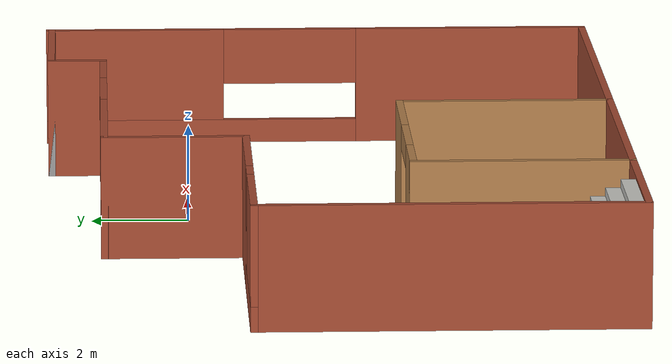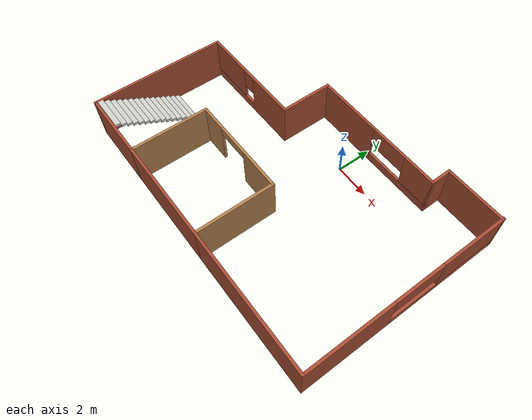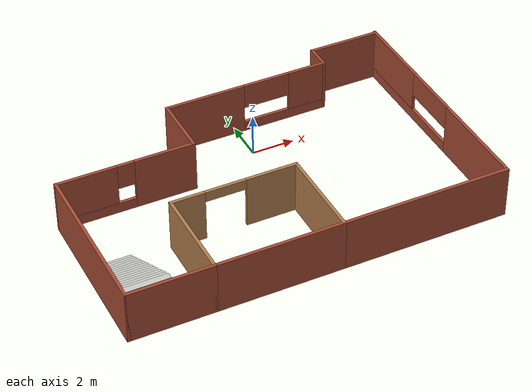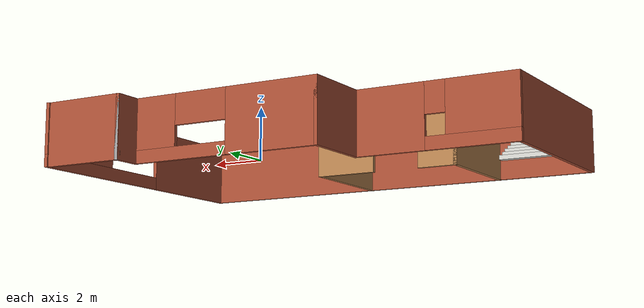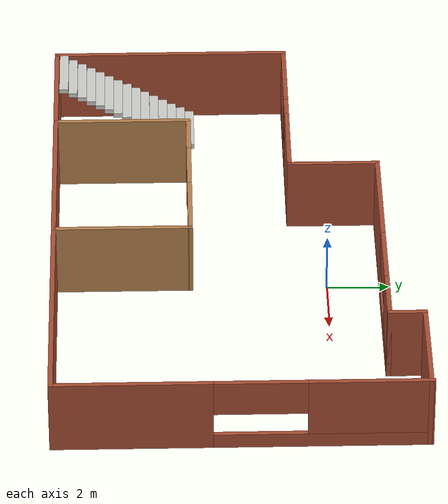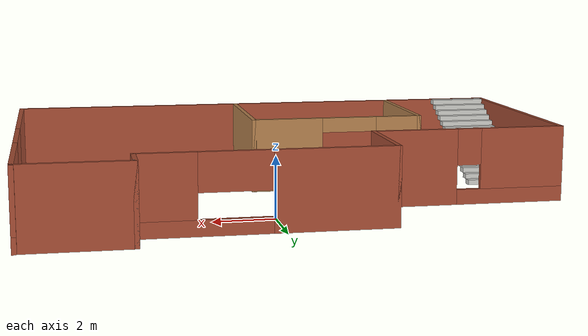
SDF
<?xml version='1.0'?>
<sdf version='1.7'>
  <model name='House'>
    <pose>-0.965 -2.91 0 0 -0 0</pose>
    <link name='Stairs_1'>
      <visual name='Stairs_1_Visual_0'>
        <pose>-7.73423 -1.38427 0.083333 0 -0 0</pose>
        <geometry>
          <box>
            <size>1.97093 0.298062 0.166667</size>
          </box>
        </geometry>
        <material>
          <script>
            <uri>file://media/materials/scripts/gazebo.material</uri>
            <name>Gazebo/CeilingTiled</name>
          </script>
          <ambient>1 1 1 1</ambient>
        </material>
        <meta>
          <layer>0</layer>
        </meta>
      </visual>
      <collision name='Stairs_1_Collision_0'>
        <geometry>
          <box>
            <size>1.97093 0.298062 0.166667</size>
          </box>
        </geometry>
        <pose>-7.73423 -1.38427 0.083333 0 -0 0</pose>
      </collision>
      <visual name='Stairs_1_Visual_1'>
        <pose>-7.73423 -1.68233 0.25 0 -0 0</pose>
        <geometry>
          <box>
            <size>1.97093 0.298062 0.166667</size>
          </box>
        </geometry>
        <material>
          <script>
            <uri>file://media/materials/scripts/gazebo.material</uri>
            <name>Gazebo/CeilingTiled</name>
          </script>
          <ambient>1 1 1 1</ambient>
        </material>
        <meta>
          <layer>0</layer>
        </meta>
      </visual>
      <collision name='Stairs_1_Collision_1'>
        <geometry>
          <box>
            <size>1.97093 0.298062 0.166667</size>
          </box>
        </geometry>
        <pose>-7.73423 -1.68233 0.25 0 -0 0</pose>
      </collision>
      <visual name='Stairs_1_Visual_2'>
        <pose>-7.73423 -1.98039 0.416667 0 -0 0</pose>
        <geometry>
          <box>
            <size>1.97093 0.298062 0.166667</size>
          </box>
        </geometry>
        <material>
          <script>
            <uri>file://media/materials/scripts/gazebo.material</uri>
            <name>Gazebo/CeilingTiled</name>
          </script>
          <ambient>1 1 1 1</ambient>
        </material>
        <meta>
          <layer>0</layer>
        </meta>
      </visual>
      <collision name='Stairs_1_Collision_2'>
        <geometry>
          <box>
            <size>1.97093 0.298062 0.166667</size>
          </box>
        </geometry>
        <pose>-7.73423 -1.98039 0.416667 0 -0 0</pose>
      </collision>
      <visual name='Stairs_1_Visual_3'>
        <pose>-7.73423 -2.27845 0.583333 0 -0 0</pose>
        <geometry>
          <box>
            <size>1.97093 0.298062 0.166667</size>
          </box>
        </geometry>
        <material>
          <script>
            <uri>file://media/materials/scripts/gazebo.material</uri>
            <name>Gazebo/CeilingTiled</name>
          </script>
          <ambient>1 1 1 1</ambient>
        </material>
        <meta>
          <layer>0</layer>
        </meta>
      </visual>
      <collision name='Stairs_1_Collision_3'>
        <geometry>
          <box>
            <size>1.97093 0.298062 0.166667</size>
          </box>
        </geometry>
        <pose>-7.73423 -2.27845 0.583333 0 -0 0</pose>
      </collision>
      <visual name='Stairs_1_Visual_4'>
        <pose>-7.73423 -2.57651 0.75 0 -0 0</pose>
        <geometry>
          <box>
            <size>1.97093 0.298062 0.166667</size>
          </box>
        </geometry>
        <material>
          <script>
            <uri>file://media/materials/scripts/gazebo.material</uri>
            <name>Gazebo/CeilingTiled</name>
          </script>
          <ambient>1 1 1 1</ambient>
        </material>
        <meta>
          <layer>0</layer>
        </meta>
      </visual>
      <collision name='Stairs_1_Collision_4'>
        <geometry>
          <box>
            <size>1.97093 0.298062 0.166667</size>
          </box>
        </geometry>
        <pose>-7.73423 -2.57651 0.75 0 -0 0</pose>
      </collision>
      <visual name='Stairs_1_Visual_5'>
        <pose>-7.73423 -2.87458 0.916667 0 -0 0</pose>
        <geometry>
          <box>
            <size>1.97093 0.298062 0.166667</size>
          </box>
        </geometry>
        <material>
          <script>
            <uri>file://media/materials/scripts/gazebo.material</uri>
            <name>Gazebo/CeilingTiled</name>
          </script>
          <ambient>1 1 1 1</ambient>
        </material>
        <meta>
          <layer>0</layer>
        </meta>
      </visual>
      <collision name='Stairs_1_Collision_5'>
        <geometry>
          <box>
            <size>1.97093 0.298062 0.166667</size>
          </box>
        </geometry>
        <pose>-7.73423 -2.87458 0.916667 0 -0 0</pose>
      </collision>
      <visual name='Stairs_1_Visual_6'>
        <pose>-7.73423 -3.17264 1.08333 0 -0 0</pose>
        <geometry>
          <box>
            <size>1.97093 0.298062 0.166667</size>
          </box>
        </geometry>
        <material>
          <script>
            <uri>file://media/materials/scripts/gazebo.material</uri>
            <name>Gazebo/CeilingTiled</name>
          </script>
          <ambient>1 1 1 1</ambient>
        </material>
        <meta>
          <layer>0</layer>
        </meta>
      </visual>
      <collision name='Stairs_1_Collision_6'>
        <geometry>
          <box>
            <size>1.97093 0.298062 0.166667</size>
          </box>
        </geometry>
        <pose>-7.73423 -3.17264 1.08333 0 -0 0</pose>
      </collision>
      <visual name='Stairs_1_Visual_7'>
        <pose>-7.73423 -3.4707 1.25 0 -0 0</pose>
        <geometry>
          <box>
            <size>1.97093 0.298062 0.166667</size>
          </box>
        </geometry>
        <material>
          <script>
            <uri>file://media/materials/scripts/gazebo.material</uri>
            <name>Gazebo/CeilingTiled</name>
          </script>
          <ambient>1 1 1 1</ambient>
        </material>
        <meta>
          <layer>0</layer>
        </meta>
      </visual>
      <collision name='Stairs_1_Collision_7'>
        <geometry>
          <box>
            <size>1.97093 0.298062 0.166667</size>
          </box>
        </geometry>
        <pose>-7.73423 -3.4707 1.25 0 -0 0</pose>
      </collision>
      <visual name='Stairs_1_Visual_8'>
        <pose>-7.73423 -3.76876 1.41667 0 -0 0</pose>
        <geometry>
          <box>
            <size>1.97093 0.298062 0.166667</size>
          </box>
        </geometry>
        <material>
          <script>
            <uri>file://media/materials/scripts/gazebo.material</uri>
            <name>Gazebo/CeilingTiled</name>
          </script>
          <ambient>1 1 1 1</ambient>
        </material>
        <meta>
          <layer>0</layer>
        </meta>
      </visual>
      <collision name='Stairs_1_Collision_8'>
        <geometry>
          <box>
            <size>1.97093 0.298062 0.166667</size>
          </box>
        </geometry>
        <pose>-7.73423 -3.76876 1.41667 0 -0 0</pose>
      </collision>
      <visual name='Stairs_1_Visual_9'>
        <pose>-7.73423 -4.06682 1.58333 0 -0 0</pose>
        <geometry>
          <box>
            <size>1.97093 0.298062 0.166667</size>
          </box>
        </geometry>
        <material>
          <script>
            <uri>file://media/materials/scripts/gazebo.material</uri>
            <name>Gazebo/CeilingTiled</name>
          </script>
          <ambient>1 1 1 1</ambient>
        </material>
        <meta>
          <layer>0</layer>
        </meta>
      </visual>
      <collision name='Stairs_1_Collision_9'>
        <geometry>
          <box>
            <size>1.97093 0.298062 0.166667</size>
          </box>
        </geometry>
        <pose>-7.73423 -4.06682 1.58333 0 -0 0</pose>
      </collision>
      <visual name='Stairs_1_Visual_10'>
        <pose>-7.73423 -4.36489 1.75 0 -0 0</pose>
        <geometry>
          <box>
            <size>1.97093 0.298062 0.166667</size>
          </box>
        </geometry>
        <material>
          <script>
            <uri>file://media/materials/scripts/gazebo.material</uri>
            <name>Gazebo/CeilingTiled</name>
          </script>
          <ambient>1 1 1 1</ambient>
        </material>
        <meta>
          <layer>0</layer>
        </meta>
      </visual>
      <collision name='Stairs_1_Collision_10'>
        <geometry>
          <box>
            <size>1.97093 0.298062 0.166667</size>
          </box>
        </geometry>
        <pose>-7.73423 -4.36489 1.75 0 -0 0</pose>
      </collision>
      <visual name='Stairs_1_Visual_11'>
        <pose>-7.73423 -4.66295 1.91667 0 -0 0</pose>
        <geometry>
          <box>
            <size>1.97093 0.298062 0.166667</size>
          </box>
        </geometry>
        <material>
          <script>
            <uri>file://media/materials/scripts/gazebo.material</uri>
            <name>Gazebo/CeilingTiled</name>
          </script>
          <ambient>1 1 1 1</ambient>
        </material>
        <meta>
          <layer>0</layer>
        </meta>
      </visual>
      <collision name='Stairs_1_Collision_11'>
        <geometry>
          <box>
            <size>1.97093 0.298062 0.166667</size>
          </box>
        </geometry>
        <pose>-7.73423 -4.66295 1.91667 0 -0 0</pose>
      </collision>
      <visual name='Stairs_1_Visual_12'>
        <pose>-7.73423 -4.96101 2.08333 0 -0 0</pose>
        <geometry>
          <box>
            <size>1.97093 0.298062 0.166667</size>
          </box>
        </geometry>
        <material>
          <script>
            <uri>file://media/materials/scripts/gazebo.material</uri>
            <name>Gazebo/CeilingTiled</name>
          </script>
          <ambient>1 1 1 1</ambient>
        </material>
        <meta>
          <layer>0</layer>
        </meta>
      </visual>
      <collision name='Stairs_1_Collision_12'>
        <geometry>
          <box>
            <size>1.97093 0.298062 0.166667</size>
          </box>
        </geometry>
        <pose>-7.73423 -4.96101 2.08333 0 -0 0</pose>
      </collision>
      <visual name='Stairs_1_Visual_13'>
        <pose>-7.73423 -5.25907 2.25 0 -0 0</pose>
        <geometry>
          <box>
            <size>1.97093 0.298062 0.166667</size>
          </box>
        </geometry>
        <material>
          <script>
            <uri>file://media/materials/scripts/gazebo.material</uri>
            <name>Gazebo/CeilingTiled</name>
          </script>
          <ambient>1 1 1 1</ambient>
        </material>
        <meta>
          <layer>0</layer>
        </meta>
      </visual>
      <collision name='Stairs_1_Collision_13'>
        <geometry>
          <box>
            <size>1.97093 0.298062 0.166667</size>
          </box>
        </geometry>
        <pose>-7.73423 -5.25907 2.25 0 -0 0</pose>
      </collision>
      <visual name='Stairs_1_Visual_14'>
        <pose>-7.73423 -5.55714 2.41667 0 -0 0</pose>
        <geometry>
          <box>
            <size>1.97093 0.298062 0.166667</size>
          </box>
        </geometry>
        <material>
          <script>
            <uri>file://media/materials/scripts/gazebo.material</uri>
            <name>Gazebo/CeilingTiled</name>
          </script>
          <ambient>1 1 1 1</ambient>
        </material>
        <meta>
          <layer>0</layer>
        </meta>
      </visual>
      <collision name='Stairs_1_Collision_14'>
        <geometry>
          <box>
            <size>1.97093 0.298062 0.166667</size>
          </box>
        </geometry>
        <pose>-7.73423 -5.55714 2.41667 0 -0 0</pose>
      </collision>
    </link>
    <link name='Wall_0'>
      <pose>-5.6 1.8 0 0 -0 3.14159</pose>
      <visual name='Wall_0_Visual_0'>
        <pose>-1.81391 0 1.25 0 -0 0</pose>
        <geometry>
          <box>
            <size>2.87217 0.15 2.5</size>
          </box>
        </geometry>
        <material>
          <script>
            <uri>file://media/materials/scripts/gazebo.material</uri>
            <name>Gazebo/Bricks</name>
          </script>
          <ambient>1 1 1 1</ambient>
        </material>
        <meta>
          <layer>0</layer>
        </meta>
      </visual>
      <collision name='Wall_0_Collision_0'>
        <geometry>
          <box>
            <size>2.87217 0.15 2.5</size>
          </box>
        </geometry>
        <pose>-1.81391 0 1.25 0 -0 0</pose>
      </collision>
      <visual name='Wall_0_Visual_1'>
        <pose>1.43609 0 0.25 0 -0 0</pose>
        <geometry>
          <box>
            <size>3.62783 0.15 0.5</size>
          </box>
        </geometry>
        <material>
          <script>
            <uri>file://media/materials/scripts/gazebo.material</uri>
            <name>Gazebo/Bricks</name>
          </script>
          <ambient>1 1 1 1</ambient>
        </material>
        <meta>
          <layer>0</layer>
        </meta>
      </visual>
      <collision name='Wall_0_Collision_1'>
        <geometry>
          <box>
            <size>3.62783 0.15 0.5</size>
          </box>
        </geometry>
        <pose>1.43609 0 0.25 0 -0 0</pose>
      </collision>
      <visual name='Wall_0_Visual_2'>
        <pose>1.83609 0 1.5 0 -0 0</pose>
        <geometry>
          <box>
            <size>2.82783 0.15 2</size>
          </box>
        </geometry>
        <material>
          <script>
            <uri>file://media/materials/scripts/gazebo.material</uri>
            <name>Gazebo/Bricks</name>
          </script>
          <ambient>1 1 1 1</ambient>
        </material>
        <meta>
          <layer>0</layer>
        </meta>
      </visual>
      <collision name='Wall_0_Collision_2'>
        <geometry>
          <box>
            <size>2.82783 0.15 2</size>
          </box>
        </geometry>
        <pose>1.83609 0 1.5 0 -0 0</pose>
      </collision>
      <visual name='Wall_0_Visual_3'>
        <pose>0.022173 0 1.9 0 -0 0</pose>
        <geometry>
          <box>
            <size>0.8 0.15 1.2</size>
          </box>
        </geometry>
        <material>
          <script>
            <uri>file://media/materials/scripts/gazebo.material</uri>
            <name>Gazebo/Bricks</name>
          </script>
          <ambient>1 1 1 1</ambient>
        </material>
        <meta>
          <layer>0</layer>
        </meta>
      </visual>
      <collision name='Wall_0_Collision_3'>
        <geometry>
          <box>
            <size>0.8 0.15 1.2</size>
          </box>
        </geometry>
        <pose>0.022173 0 1.9 0 -0 0</pose>
      </collision>
    </link>
    <link name='Wall_1'>
      <collision name='Wall_1_Collision'>
        <geometry>
          <box>
            <size>7.75 0.15 2.5</size>
          </box>
        </geometry>
        <pose>0 0 1.25 0 -0 0</pose>
      </collision>
      <visual name='Wall_1_Visual'>
        <pose>0 0 1.25 0 -0 0</pose>
        <geometry>
          <box>
            <size>7.75 0.15 2.5</size>
          </box>
        </geometry>
        <material>
          <script>
            <uri>file://media/materials/scripts/gazebo.material</uri>
            <name>Gazebo/Bricks</name>
          </script>
          <ambient>1 1 1 1</ambient>
        </material>
        <meta>
          <layer>0</layer>
        </meta>
      </visual>
      <pose>-8.775 -2 0 0 -0 -1.5708</pose>
    </link>
    <link name='Wall_12'>
      <collision name='Wall_12_Collision'>
        <geometry>
          <box>
            <size>8 0.15 2.5</size>
          </box>
        </geometry>
        <pose>0 0 1.25 0 -0 0</pose>
      </collision>
      <visual name='Wall_12_Visual'>
        <pose>0 0 1.25 0 -0 0</pose>
        <geometry>
          <box>
            <size>8 0.15 2.5</size>
          </box>
        </geometry>
        <material>
          <script>
            <uri>file://media/materials/scripts/gazebo.material</uri>
            <name>Gazebo/Bricks</name>
          </script>
          <ambient>1 1 1 1</ambient>
        </material>
        <meta>
          <layer>0</layer>
        </meta>
      </visual>
      <pose>4.85 -5.8 0 0 -0 0</pose>
    </link>
    <link name='Wall_13'>
      <pose>8.775 0 0 0 -0 1.5708</pose>
      <visual name='Wall_13_Visual_0'>
        <pose>-3.36861 0 1.25 0 -0 0</pose>
        <geometry>
          <box>
            <size>5.01277 0.15 2.5</size>
          </box>
        </geometry>
        <material>
          <script>
            <uri>file://media/materials/scripts/gazebo.material</uri>
            <name>Gazebo/Bricks</name>
          </script>
          <ambient>1 1 1 1</ambient>
        </material>
        <meta>
          <layer>0</layer>
        </meta>
      </visual>
      <collision name='Wall_13_Collision_0'>
        <geometry>
          <box>
            <size>5.01277 0.15 2.5</size>
          </box>
        </geometry>
        <pose>-3.36861 0 1.25 0 -0 0</pose>
      </collision>
      <visual name='Wall_13_Visual_1'>
        <pose>2.50639 0 0.25 0 -0 0</pose>
        <geometry>
          <box>
            <size>6.73723 0.15 0.5</size>
          </box>
        </geometry>
        <material>
          <script>
            <uri>file://media/materials/scripts/gazebo.material</uri>
            <name>Gazebo/Bricks</name>
          </script>
          <ambient>1 1 1 1</ambient>
        </material>
        <meta>
          <layer>0</layer>
        </meta>
      </visual>
      <collision name='Wall_13_Collision_1'>
        <geometry>
          <box>
            <size>6.73723 0.15 0.5</size>
          </box>
        </geometry>
        <pose>2.50639 0 0.25 0 -0 0</pose>
      </collision>
      <visual name='Wall_13_Visual_2'>
        <pose>3.94645 0 1.5 0 -0 0</pose>
        <geometry>
          <box>
            <size>3.85709 0.15 2</size>
          </box>
        </geometry>
        <material>
          <script>
            <uri>file://media/materials/scripts/gazebo.material</uri>
            <name>Gazebo/Bricks</name>
          </script>
          <ambient>1 1 1 1</ambient>
        </material>
        <meta>
          <layer>0</layer>
        </meta>
      </visual>
      <collision name='Wall_13_Collision_2'>
        <geometry>
          <box>
            <size>3.85709 0.15 2</size>
          </box>
        </geometry>
        <pose>3.94645 0 1.5 0 -0 0</pose>
      </collision>
      <visual name='Wall_13_Visual_3'>
        <pose>0.577842 0 1.9 0 -0 0</pose>
        <geometry>
          <box>
            <size>2.88014 0.15 1.2</size>
          </box>
        </geometry>
        <material>
          <script>
            <uri>file://media/materials/scripts/gazebo.material</uri>
            <name>Gazebo/Bricks</name>
          </script>
          <ambient>1 1 1 1</ambient>
        </material>
        <meta>
          <layer>0</layer>
        </meta>
      </visual>
      <collision name='Wall_13_Collision_3'>
        <geometry>
          <box>
            <size>2.88014 0.15 1.2</size>
          </box>
        </geometry>
        <pose>0.577842 0 1.9 0 -0 0</pose>
      </collision>
    </link>
    <link name='Wall_15'>
      <collision name='Wall_15_Collision'>
        <geometry>
          <box>
            <size>1.25 0.15 2.5</size>
          </box>
        </geometry>
        <pose>0 0 1.25 0 -0 0</pose>
      </collision>
      <visual name='Wall_15_Visual'>
        <pose>0 0 1.25 0 -0 0</pose>
        <geometry>
          <box>
            <size>1.25 0.15 2.5</size>
          </box>
        </geometry>
        <material>
          <script>
            <uri>file://media/materials/scripts/gazebo.material</uri>
            <name>Gazebo/Bricks</name>
          </script>
          <ambient>1 1 1 1</ambient>
        </material>
        <meta>
          <layer>0</layer>
        </meta>
      </visual>
      <pose>5.425 5.2 0 0 -0 1.5708</pose>
    </link>
    <link name='Wall_16'>
      <collision name='Wall_16_Collision'>
        <geometry>
          <box>
            <size>0.15 0.15 2.5</size>
          </box>
        </geometry>
        <pose>0 0 1.25 0 -0 0</pose>
      </collision>
      <visual name='Wall_16_Visual'>
        <pose>0 0 1.25 0 -0 0</pose>
        <geometry>
          <box>
            <size>0.15 0.15 2.5</size>
          </box>
        </geometry>
        <material>
          <script>
            <uri>file://media/materials/scripts/gazebo.material</uri>
            <name>Gazebo/Grey</name>
          </script>
          <ambient>1 1 1 1</ambient>
        </material>
        <meta>
          <layer>0</layer>
        </meta>
      </visual>
      <pose>5.425 5.75 0 0 -0 0</pose>
    </link>
    <link name='Wall_2'>
      <collision name='Wall_2_Collision'>
        <geometry>
          <box>
            <size>4 0.15 2.5</size>
          </box>
        </geometry>
        <pose>0 0 1.25 0 -0 0</pose>
      </collision>
      <visual name='Wall_2_Visual'>
        <pose>0 0 1.25 0 -0 0</pose>
        <geometry>
          <box>
            <size>4 0.15 2.5</size>
          </box>
        </geometry>
        <material>
          <script>
            <uri>file://media/materials/scripts/gazebo.material</uri>
            <name>Gazebo/Bricks</name>
          </script>
          <ambient>1 1 1 1</ambient>
        </material>
        <meta>
          <layer>0</layer>
        </meta>
      </visual>
      <pose>-6.85 -5.8 0 0 -0 0</pose>
    </link>
    <link name='Wall_3'>
      <collision name='Wall_3_Collision'>
        <geometry>
          <box>
            <size>4.5 0.15 2.5</size>
          </box>
        </geometry>
        <pose>0 0 1.25 0 -0 0</pose>
      </collision>
      <visual name='Wall_3_Visual'>
        <pose>0 0 1.25 0 -0 0</pose>
        <geometry>
          <box>
            <size>4.5 0.15 2.5</size>
          </box>
        </geometry>
        <material>
          <script>
            <uri>file://media/materials/scripts/gazebo.material</uri>
            <name>Gazebo/Wood</name>
          </script>
          <ambient>1 1 1 1</ambient>
        </material>
        <meta>
          <layer>0</layer>
        </meta>
      </visual>
      <pose>-4.925 -3.625 0 0 -0 1.5708</pose>
    </link>
    <link name='Wall_31'>
      <collision name='Wall_31_Collision'>
        <geometry>
          <box>
            <size>3.5 0.15 2.5</size>
          </box>
        </geometry>
        <pose>0 0 1.25 0 -0 0</pose>
      </collision>
      <visual name='Wall_31_Visual'>
        <pose>0 0 1.25 0 -0 0</pose>
        <geometry>
          <box>
            <size>3.5 0.15 2.5</size>
          </box>
        </geometry>
        <material>
          <script>
            <uri>file://media/materials/scripts/gazebo.material</uri>
            <name>Gazebo/Bricks</name>
          </script>
          <ambient>1 1 1 1</ambient>
        </material>
        <meta>
          <layer>0</layer>
        </meta>
      </visual>
      <pose>7.1 5.75 0 0 -0 0</pose>
    </link>
    <link name='Wall_4'>
      <pose>-2 -1.45 0 0 -0 0</pose>
      <visual name='Wall_4_Visual_0'>
        <pose>-2.18677 0 1.25 0 -0 0</pose>
        <geometry>
          <box>
            <size>1.62646 0.15 2.5</size>
          </box>
        </geometry>
        <material>
          <script>
            <uri>file://media/materials/scripts/gazebo.material</uri>
            <name>Gazebo/Wood</name>
          </script>
          <ambient>0.996078 0.47451 0.0196078 1</ambient>
        </material>
        <meta>
          <layer>0</layer>
        </meta>
      </visual>
      <collision name='Wall_4_Collision_0'>
        <geometry>
          <box>
            <size>1.62646 0.15 2.5</size>
          </box>
        </geometry>
        <pose>-2.18677 0 1.25 0 -0 0</pose>
      </collision>
      <visual name='Wall_4_Visual_1'>
        <pose>1.76797 0 1.25 0 -0 0</pose>
        <geometry>
          <box>
            <size>2.46406 0.15 2.5</size>
          </box>
        </geometry>
        <material>
          <script>
            <uri>file://media/materials/scripts/gazebo.material</uri>
            <name>Gazebo/Wood</name>
          </script>
          <ambient>0.996078 0.47451 0.0196078 1</ambient>
        </material>
        <meta>
          <layer>0</layer>
        </meta>
      </visual>
      <collision name='Wall_4_Collision_1'>
        <geometry>
          <box>
            <size>2.46406 0.15 2.5</size>
          </box>
        </geometry>
        <pose>1.76797 0 1.25 0 -0 0</pose>
      </collision>
      <visual name='Wall_4_Visual_2'>
        <pose>-0.418801 0 2.25 0 -0 0</pose>
        <geometry>
          <box>
            <size>1.90948 0.15 0.5</size>
          </box>
        </geometry>
        <material>
          <script>
            <uri>file://media/materials/scripts/gazebo.material</uri>
            <name>Gazebo/Wood</name>
          </script>
          <ambient>0.996078 0.47451 0.0196078 1</ambient>
        </material>
        <meta>
          <layer>0</layer>
        </meta>
      </visual>
      <collision name='Wall_4_Collision_2'>
        <geometry>
          <box>
            <size>1.90948 0.15 0.5</size>
          </box>
        </geometry>
        <pose>-0.418801 0 2.25 0 -0 0</pose>
      </collision>
    </link>
    <link name='Wall_5'>
      <collision name='Wall_5_Collision'>
        <geometry>
          <box>
            <size>4.5 0.15 2.5</size>
          </box>
        </geometry>
        <pose>0 0 1.25 0 -0 0</pose>
      </collision>
      <visual name='Wall_5_Visual'>
        <pose>0 0 1.25 0 -0 0</pose>
        <geometry>
          <box>
            <size>4.5 0.15 2.5</size>
          </box>
        </geometry>
        <material>
          <script>
            <uri>file://media/materials/scripts/gazebo.material</uri>
            <name>Gazebo/Wood</name>
          </script>
          <ambient>1 1 1 1</ambient>
        </material>
        <meta>
          <layer>0</layer>
        </meta>
      </visual>
      <pose>0.925 -3.625 0 0 -0 -1.5708</pose>
    </link>
    <link name='Wall_6'>
      <collision name='Wall_6_Collision'>
        <geometry>
          <box>
            <size>6 0.15 2.5</size>
          </box>
        </geometry>
        <pose>0 0 1.25 0 -0 0</pose>
      </collision>
      <visual name='Wall_6_Visual'>
        <pose>0 0 1.25 0 -0 0</pose>
        <geometry>
          <box>
            <size>6 0.15 2.5</size>
          </box>
        </geometry>
        <material>
          <script>
            <uri>file://media/materials/scripts/gazebo.material</uri>
            <name>Gazebo/Bricks</name>
          </script>
          <ambient>1 1 1 1</ambient>
        </material>
        <meta>
          <layer>0</layer>
        </meta>
      </visual>
      <pose>-2 -5.8 0 0 -0 3.14159</pose>
    </link>
    <link name='Wall_8'>
      <collision name='Wall_8_Collision'>
        <geometry>
          <box>
            <size>3 0.15 2.5</size>
          </box>
        </geometry>
        <pose>0 0 1.25 0 -0 0</pose>
      </collision>
      <visual name='Wall_8_Visual'>
        <pose>0 0 1.25 0 -0 0</pose>
        <geometry>
          <box>
            <size>3 0.15 2.5</size>
          </box>
        </geometry>
        <material>
          <script>
            <uri>file://media/materials/scripts/gazebo.material</uri>
            <name>Gazebo/Bricks</name>
          </script>
          <ambient>1 1 1 1</ambient>
        </material>
        <meta>
          <layer>0</layer>
        </meta>
      </visual>
      <pose>-2.425 3.225 0 0 -0 1.5708</pose>
    </link>
    <link name='Wall_9'>
      <pose>1.5 4.65 0 0 -0 0</pose>
      <visual name='Wall_9_Visual_0'>
        <pose>-2.07496 0 1.25 0 -0 0</pose>
        <geometry>
          <box>
            <size>3.85007 0.15 2.5</size>
          </box>
        </geometry>
        <material>
          <script>
            <uri>file://media/materials/scripts/gazebo.material</uri>
            <name>Gazebo/Bricks</name>
          </script>
          <ambient>1 1 1 1</ambient>
        </material>
        <meta>
          <layer>0</layer>
        </meta>
      </visual>
      <collision name='Wall_9_Collision_0'>
        <geometry>
          <box>
            <size>3.85007 0.15 2.5</size>
          </box>
        </geometry>
        <pose>-2.07496 0 1.25 0 -0 0</pose>
      </collision>
      <visual name='Wall_9_Visual_1'>
        <pose>1.92504 0 0.25 0 -0 0</pose>
        <geometry>
          <box>
            <size>4.14993 0.15 0.5</size>
          </box>
        </geometry>
        <material>
          <script>
            <uri>file://media/materials/scripts/gazebo.material</uri>
            <name>Gazebo/Bricks</name>
          </script>
          <ambient>1 1 1 1</ambient>
        </material>
        <meta>
          <layer>0</layer>
        </meta>
      </visual>
      <collision name='Wall_9_Collision_1'>
        <geometry>
          <box>
            <size>4.14993 0.15 0.5</size>
          </box>
        </geometry>
        <pose>1.92504 0 0.25 0 -0 0</pose>
      </collision>
      <visual name='Wall_9_Visual_2'>
        <pose>3.04391 0 1.5 0 -0 0</pose>
        <geometry>
          <box>
            <size>1.91219 0.15 2</size>
          </box>
        </geometry>
        <material>
          <script>
            <uri>file://media/materials/scripts/gazebo.material</uri>
            <name>Gazebo/Bricks</name>
          </script>
          <ambient>1 1 1 1</ambient>
        </material>
        <meta>
          <layer>0</layer>
        </meta>
      </visual>
      <collision name='Wall_9_Collision_2'>
        <geometry>
          <box>
            <size>1.91219 0.15 2</size>
          </box>
        </geometry>
        <pose>3.04391 0 1.5 0 -0 0</pose>
      </collision>
      <visual name='Wall_9_Visual_3'>
        <pose>0.968942 0 1.9 0 -0 0</pose>
        <geometry>
          <box>
            <size>2.23774 0.15 1.2</size>
          </box>
        </geometry>
        <material>
          <script>
            <uri>file://media/materials/scripts/gazebo.material</uri>
            <name>Gazebo/Bricks</name>
          </script>
          <ambient>1 1 1 1</ambient>
        </material>
        <meta>
          <layer>0</layer>
        </meta>
      </visual>
      <collision name='Wall_9_Collision_3'>
        <geometry>
          <box>
            <size>2.23774 0.15 1.2</size>
          </box>
        </geometry>
        <pose>0.968942 0 1.9 0 -0 0</pose>
      </collision>
    </link>
    <static>1</static>
  </model>
</sdf>
